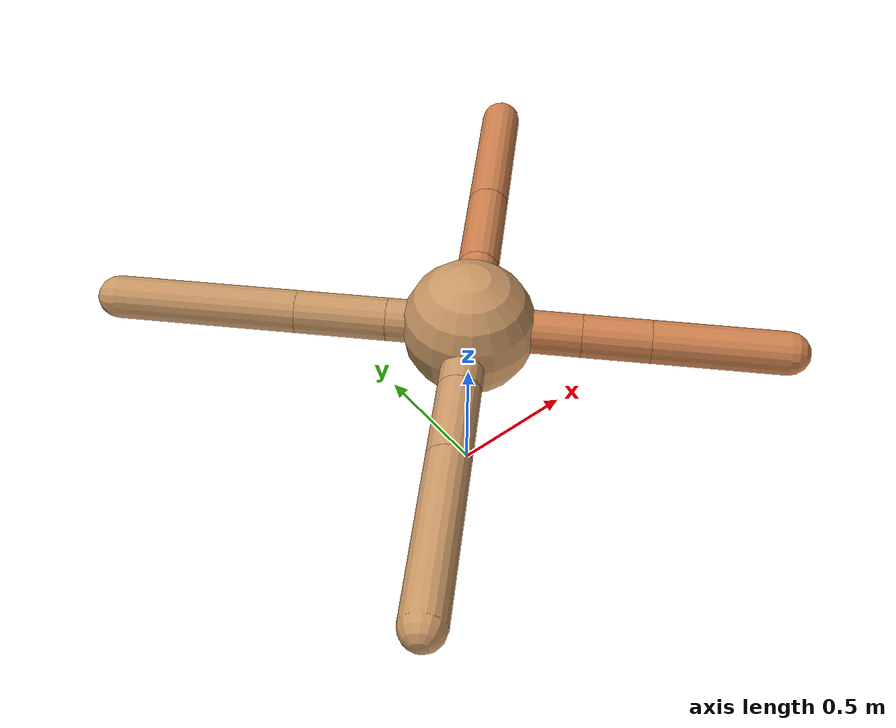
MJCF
<mujoco model="ant">
  <compiler angle="degree" coordinate="local" inertiafromgeom="true" />
  <option integrator="RK4" timestep="0.01" />
  <custom>
    <numeric data="0.0 0.0 0.55 1.0 0.0 0.0 0.0 0.0 1.0 0.0 -1.0 0.0 -1.0 0.0 1.0" name="init_qpos" />
  </custom>
  <default>
    <joint armature="1" damping="1" limited="true" />
    <geom conaffinity="0" condim="3" density="5.0" friction="1.5 0.1 0.1" margin="0.01" rgba="0.8 0.6 0.4 1" />
  </default>
  <worldbody>
    <body name="torso" pos="0 0 0.75">
      <geom name="torso_geom" pos="0 0 0" size="0.25" type="sphere" />

      <body name="front_left_leg" pos="0 0 0">
        <geom fromto="0.0 0.0 0.0 0.23384934456233905 0.23384934456233905 0.0" name="aux_1_geom" size="0.08" type="capsule" rgba=".8 .5 .3 1" />
        <body name="aux_1" pos="0.23384934456233905 0.23384934456233905 0.0">
          <joint axis="0 0 1" name="hip_1" pos="0.0 0.0 0.0" range="-40 40" type="hinge" />
          <geom fromto="0.0 0.0 0.0 0.27689436293787734 0.27689436293787734 0.0" name="left_leg_geom" size="0.08" type="capsule" rgba=".8 .5 .3 1" />
          <body pos="0.27689436293787734 0.27689436293787734 0.0" name="front_left_foot">
            <joint axis="-1 1 0" name="ankle_1" pos="0.0 0.0 0.0" range="30 100" type="hinge" />
            <geom fromto="0.0 0.0 0.0 0.41983122558535213 0.41983122558535213 0.0" name="left_ankle_geom" size="0.08" type="capsule" rgba=".8 .5 .3 1" />
          </body>
        </body>
      </body>
      <body name="front_right_leg" pos="0 0 0">
        <geom fromto="0.0 0.0 0.0 -0.2162994909743553 0.2162994909743553 0.0" name="aux_2_geom" size="0.08" type="capsule" />
        <body name="aux_2" pos="-0.2162994909743553 0.2162994909743553 0.0">
          <joint axis="0 0 1" name="hip_2" pos="0.0 0.0 0.0" range="-40 40" type="hinge" />
          <geom fromto="0.0 0.0 0.0 -0.24118331745538898 0.24118331745538898 0.0" name="right_leg_geom" size="0.08" type="capsule" />
          <body pos="-0.24118331745538898 0.24118331745538898 0.0" name="front_right_foot">
            <joint axis="1 1 0" name="ankle_2" pos="0.0 0.0 0.0" range="-100 -30" type="hinge" />
            <geom fromto="0.0 0.0 0.0 -0.4837223294827457 0.4837223294827457 0.0" name="right_ankle_geom" size="0.08" type="capsule" />
          </body>
        </body>
      </body>
      <body name="left_back_leg" pos="0 0 0">
        <geom fromto="0.0 0.0 0.0 -0.22799761014219333 -0.22799761014219333 0.0" name="aux_3_geom" size="0.08" type="capsule" />
        <body name="aux_3" pos="-0.22799761014219333 -0.22799761014219333 0.0">
          <joint axis="0 0 1" name="hip_3" pos="0.0 0.0 0.0" range="-40 40" type="hinge" />
          <geom fromto="0.0 0.0 0.0 -0.2212992991635702 -0.2212992991635702 0.0" name="back_leg_geom" size="0.08" type="capsule" />
          <body pos="-0.2212992991635702 -0.2212992991635702 0.0" name="left_back_foot">
            <joint axis="-1 1 0" name="ankle_3" pos="0.0 0.0 0.0" range="-100 -30" type="hinge" />
            <geom fromto="0.0 0.0 0.0 -0.45414261799146766 -0.45414261799146766 0.0" name="third_ankle_geom" size="0.08" type="capsule" />
          </body>
        </body>
      </body>
      <body name="right_back_leg" pos="0 0 0">
        <geom fromto="0.0 0.0 0.0 0.293564026946551 -0.293564026946551 0.0" name="aux_4_geom" size="0.08" type="capsule" rgba=".8 .5 .3 1" />
        <body name="aux_4" pos="0.293564026946551 -0.293564026946551 0.0">
          <joint axis="0 0 1" name="hip_4" pos="0.0 0.0 0.0" range="-40 40" type="hinge" />
          <geom fromto="0.0 0.0 0.0 0.17896510026214132 -0.17896510026214132 0.0" name="rightback_leg_geom" size="0.08" type="capsule" rgba=".8 .5 .3 1" />
          <body pos="0.17896510026214132 -0.17896510026214132 0.0" name="right_back_foot">
            <joint axis="1 1 0" name="ankle_4" pos="0.0 0.0 0.0" range="30 100" type="hinge" />
            <geom fromto="0.0 0.0 0.0 0.35034623904397805 -0.35034623904397805 0.0" name="fourth_ankle_geom" size="0.08" type="capsule" rgba=".8 .5 .3 1" />
          </body>
        </body>
      </body>
    </body>
  </worldbody>
  <actuator>
    <motor ctrllimited="true" ctrlrange="-1.0 1.0" joint="hip_4" gear="150" />
    <motor ctrllimited="true" ctrlrange="-1.0 1.0" joint="ankle_4" gear="150" />
    <motor ctrllimited="true" ctrlrange="-1.0 1.0" joint="hip_1" gear="150" />
    <motor ctrllimited="true" ctrlrange="-1.0 1.0" joint="ankle_1" gear="150" />
    <motor ctrllimited="true" ctrlrange="-1.0 1.0" joint="hip_2" gear="150" />
    <motor ctrllimited="true" ctrlrange="-1.0 1.0" joint="ankle_2" gear="150" />
    <motor ctrllimited="true" ctrlrange="-1.0 1.0" joint="hip_3" gear="150" />
    <motor ctrllimited="true" ctrlrange="-1.0 1.0" joint="ankle_3" gear="150" />
  </actuator>
</mujoco>
